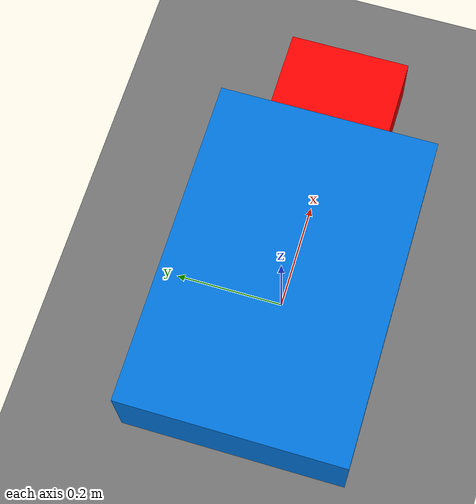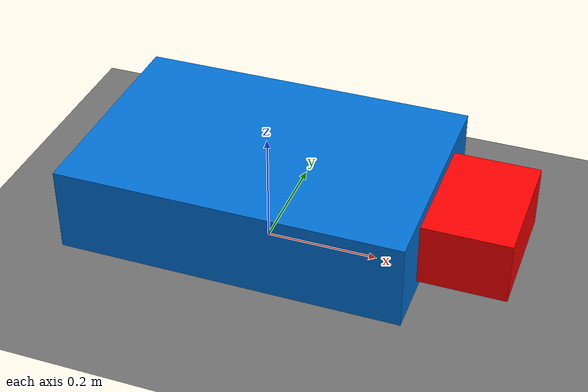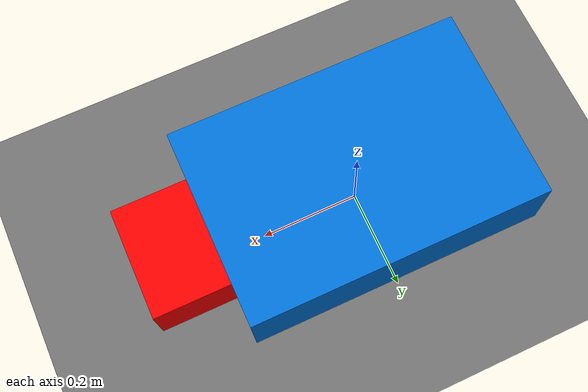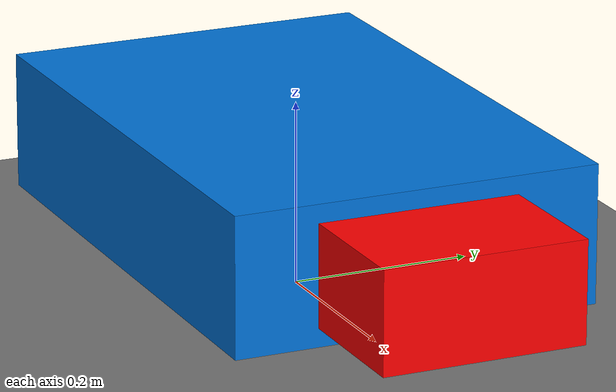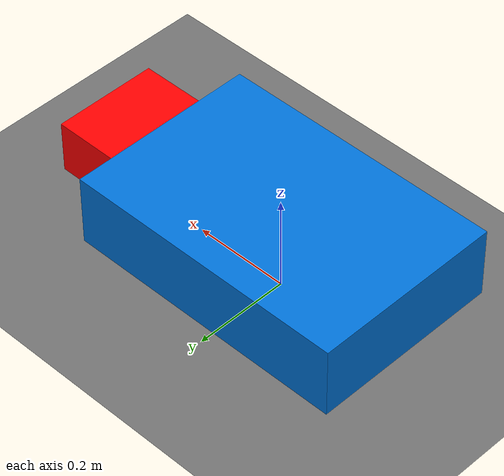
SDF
<?xml version="1.0"?>
<sdf version="1.9">
  <world name="s2_scene">
    <gravity>0 0 -9.81</gravity>
    <!-- Which collision solver to use. ODE is the default and is plenty for
         boxes and spheres. -->
    <physics name="default" type="ode">
    </physics>

    <light type="directional" name="sun">
      <pose>0 0 10 0 0 0</pose>
      <diffuse>0.9 0.9 0.9 1</diffuse>
      <specular>0.3 0.3 0.3 1</specular>
      <direction>-0.5 0.1 -0.9</direction>
    </light>

    <model name="ground_plane">
      <static>true</static>
      <link name="link">
        <collision name="collision">
          <geometry>
            <plane>
              <normal>0 0 1</normal>
              <size>100 100</size>
            </plane>
          </geometry>
        </collision>
        <visual name="visual">
          <geometry>
            <plane>
              <normal>0 0 1</normal>
              <size>100 100</size>
            </plane>
          </geometry>
          <material>
            <ambient>0.25 0.25 0.25 1</ambient>
            <diffuse>0.45 0.45 0.45 1</diffuse>
          </material>
        </visual>
      </link>
    </model>

    <include>
      <uri>model://vehicle</uri>
      <name>vehicle</name>
      <pose>0 0 0.12 0 0 0</pose>
    </include>

  </world>
</sdf>

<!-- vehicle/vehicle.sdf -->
<sdf version="1.9">
  <model name="vehicle">
    <link name="body">
      <inertial>
        <mass>1.0</mass>
        <inertia>
          <ixx>0.1</ixx>
          <iyy>0.1</iyy>
          <izz>0.1</izz>
        </inertia>
      </inertial>
      <visual name="visual">
        <geometry>
          <box>
            <size>0.6 0.4 0.15</size>
          </box>
        </geometry>
        <material>
          <ambient>0.0 0.35 0.75 1.0</ambient>
          <diffuse>0.0 0.45 0.85 1.0</diffuse>
          <specular>0.6 0.6 0.6 1.0</specular>
        </material>
      </visual>
      <visual name="front">
        <pose>0.375 0 0 0 0 0</pose>
        <geometry>
          <box><size>0.15 0.22 0.11</size></box>
        </geometry>
        <material>
          <ambient>0.8 0.0 0.0 1.0</ambient>
          <diffuse>1.0 0.0 0.0 1.0</diffuse>
        </material>
      </visual>
      <collision name="front_collision">
        <pose>0.375 0 0 0 0 0</pose>
        <geometry>
          <box><size>0.15 0.22 0.11</size></box>
        </geometry>
      </collision>
      <collision name="collision">
        <geometry>
          <box>
            <size>0.6 0.4 0.15</size>
          </box>
        </geometry>
      </collision>
    </link>
  </model>
</sdf>
